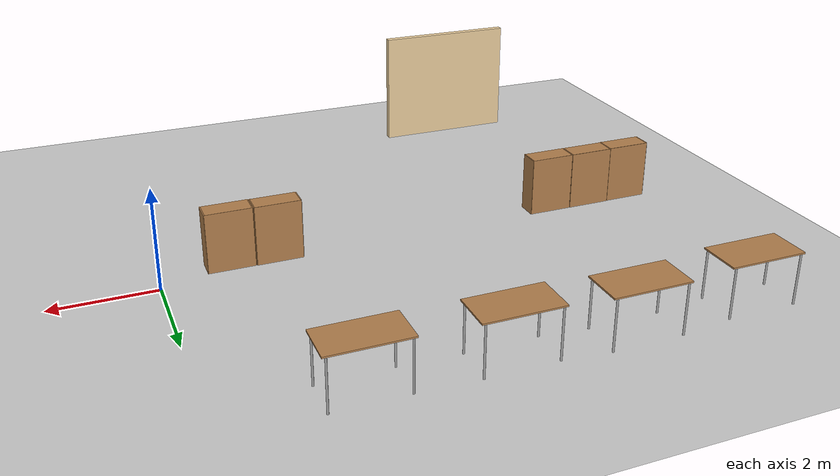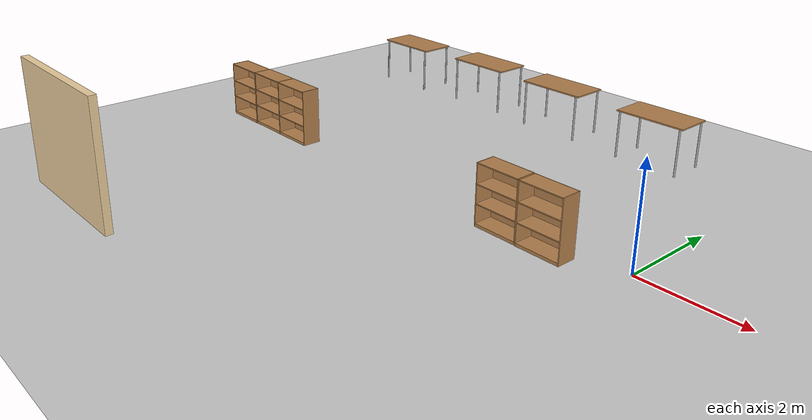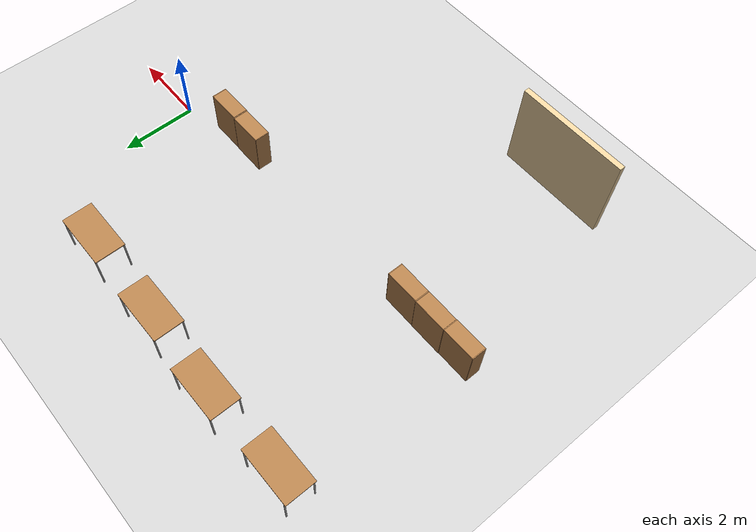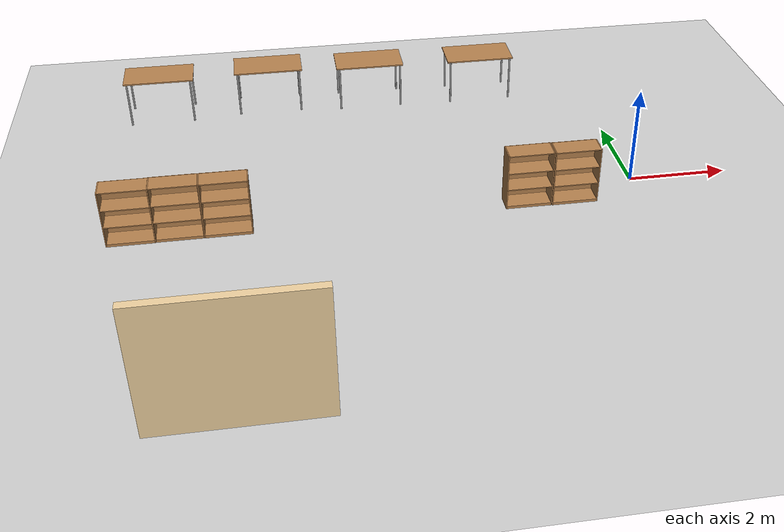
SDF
<sdf version="1.6">
 <world name="default">
  <model name="ground_plane">
   <static>1</static>
   <link name="link">
    <collision name="collision">
     <geometry><plane><normal>0 0 1</normal><size>100 100</size></plane></geometry>
     <surface><friction><ode><mu>100</mu><mu2>50</mu2></ode></friction></surface>
    </collision>
    <visual name="visual">
     <cast_shadows>0</cast_shadows>
     <geometry><plane><normal>0 0 1</normal><size>100 100</size></plane></geometry>
     <material>
      <script><uri>file://media/materials/scripts/gazebo.material</uri><name>Gazebo/Grey</name></script>
     </material>
    </visual>
   </link>
  </model>
  <model name="Office1">
   <pose>-7.98552 -5.65127 0 0 -0 0</pose>
   <link name="Wall_85">
    <collision name="Wall_85_Collision">
     <geometry><box><size>3 0.15 2.5</size></box></geometry>
     <pose>0 0 1.25 0 -0 0</pose>
    </collision>
    <visual name="Wall_85_Visual">
     <pose>0 0 1.25 0 -0 0</pose>
     <geometry><box><size>3 0.15 2.5</size></box></geometry>
     <material>
      <script><uri>file://media/materials/scripts/gazebo.material</uri><name>Gazebo/Grey</name></script>
      <ambient>0.921569 0.807843 0.615686 1</ambient>
     </material>
     <meta><layer>0</layer></meta>
    </visual>
   </link>
   <static>1</static>
  </model>
  <model name="table">
   <static>1</static>
   <link name="link">
    <collision name="surface">
     <pose>0 0 1 0 -0 0</pose>
     <geometry><box><size>1.5 0.8 0.03</size></box></geometry>
     <surface><friction><ode><mu>0.6</mu><mu2>0.6</mu2></ode></friction></surface>
    </collision>
    <visual name="visual1">
     <pose>0 0 1 0 -0 0</pose>
     <geometry><box><size>1.5 0.8 0.03</size></box></geometry>
     <material>
      <script><uri>file://media/materials/scripts/gazebo.material</uri><name>Gazebo/Wood</name></script>
     </material>
    </visual>
    <collision name="front_left_leg">
     <pose>0.68 0.38 0.5 0 -0 0</pose>
     <geometry><cylinder><radius>0.02</radius><length>1</length></cylinder></geometry>
    </collision>
    <visual name="front_left_leg">
     <pose>0.68 0.38 0.5 0 -0 0</pose>
     <geometry><cylinder><radius>0.02</radius><length>1</length></cylinder></geometry>
     <material>
      <script><uri>file://media/materials/scripts/gazebo.material</uri><name>Gazebo/Grey</name></script>
     </material>
    </visual>
    <collision name="front_right_leg">
     <pose>0.68 -0.38 0.5 0 -0 0</pose>
     <geometry><cylinder><radius>0.02</radius><length>1</length></cylinder></geometry>
    </collision>
    <visual name="front_right_leg">
     <pose>0.68 -0.38 0.5 0 -0 0</pose>
     <geometry><cylinder><radius>0.02</radius><length>1</length></cylinder></geometry>
     <material>
      <script><uri>file://media/materials/scripts/gazebo.material</uri><name>Gazebo/Grey</name></script>
     </material>
    </visual>
    <collision name="back_right_leg">
     <pose>-0.68 -0.38 0.5 0 -0 0</pose>
     <geometry><cylinder><radius>0.02</radius><length>1</length></cylinder></geometry>
    </collision>
    <visual name="back_right_leg">
     <pose>-0.68 -0.38 0.5 0 -0 0</pose>
     <geometry><cylinder><radius>0.02</radius><length>1</length></cylinder></geometry>
     <material>
      <script><uri>file://media/materials/scripts/gazebo.material</uri><name>Gazebo/Grey</name></script>
     </material>
    </visual>
    <collision name="back_left_leg">
     <pose>-0.68 0.38 0.5 0 -0 0</pose>
     <geometry><cylinder><radius>0.02</radius><length>1</length></cylinder></geometry>
    </collision>
    <visual name="back_left_leg">
     <pose>-0.68 0.38 0.5 0 -0 0</pose>
     <geometry><cylinder><radius>0.02</radius><length>1</length></cylinder></geometry>
     <material>
      <script><uri>file://media/materials/scripts/gazebo.material</uri><name>Gazebo/Grey</name></script>
     </material>
    </visual>
   </link>
   <pose>-2.37431 4.20613 0 0 -0 0</pose>
  </model>
  <model name="table_0">
   <static>1</static>
   <link name="link">
    <collision name="surface">
     <pose>0 0 1 0 -0 0</pose>
     <geometry><box><size>1.5 0.8 0.03</size></box></geometry>
     <surface><friction><ode><mu>0.6</mu><mu2>0.6</mu2></ode></friction></surface>
    </collision>
    <visual name="visual1">
     <pose>0 0 1 0 -0 0</pose>
     <geometry><box><size>1.5 0.8 0.03</size></box></geometry>
     <material>
      <script><uri>file://media/materials/scripts/gazebo.material</uri><name>Gazebo/Wood</name></script>
     </material>
    </visual>
    <collision name="front_left_leg">
     <pose>0.68 0.38 0.5 0 -0 0</pose>
     <geometry><cylinder><radius>0.02</radius><length>1</length></cylinder></geometry>
    </collision>
    <visual name="front_left_leg">
     <pose>0.68 0.38 0.5 0 -0 0</pose>
     <geometry><cylinder><radius>0.02</radius><length>1</length></cylinder></geometry>
     <material>
      <script><uri>file://media/materials/scripts/gazebo.material</uri><name>Gazebo/Grey</name></script>
     </material>
    </visual>
    <collision name="front_right_leg">
     <pose>0.68 -0.38 0.5 0 -0 0</pose>
     <geometry><cylinder><radius>0.02</radius><length>1</length></cylinder></geometry>
    </collision>
    <visual name="front_right_leg">
     <pose>0.68 -0.38 0.5 0 -0 0</pose>
     <geometry><cylinder><radius>0.02</radius><length>1</length></cylinder></geometry>
     <material>
      <script><uri>file://media/materials/scripts/gazebo.material</uri><name>Gazebo/Grey</name></script>
     </material>
    </visual>
    <collision name="back_right_leg">
     <pose>-0.68 -0.38 0.5 0 -0 0</pose>
     <geometry><cylinder><radius>0.02</radius><length>1</length></cylinder></geometry>
    </collision>
    <visual name="back_right_leg">
     <pose>-0.68 -0.38 0.5 0 -0 0</pose>
     <geometry><cylinder><radius>0.02</radius><length>1</length></cylinder></geometry>
     <material>
      <script><uri>file://media/materials/scripts/gazebo.material</uri><name>Gazebo/Grey</name></script>
     </material>
    </visual>
    <collision name="back_left_leg">
     <pose>-0.68 0.38 0.5 0 -0 0</pose>
     <geometry><cylinder><radius>0.02</radius><length>1</length></cylinder></geometry>
    </collision>
    <visual name="back_left_leg">
     <pose>-0.68 0.38 0.5 0 -0 0</pose>
     <geometry><cylinder><radius>0.02</radius><length>1</length></cylinder></geometry>
     <material>
      <script><uri>file://media/materials/scripts/gazebo.material</uri><name>Gazebo/Grey</name></script>
     </material>
    </visual>
   </link>
   <pose>-4.88669 4.25814 0 0 -0 0</pose>
  </model>
  <model name="table_1">
   <static>1</static>
   <link name="link">
    <collision name="surface">
     <pose>0 0 1 0 -0 0</pose>
     <geometry><box><size>1.5 0.8 0.03</size></box></geometry>
     <surface><friction><ode><mu>0.6</mu><mu2>0.6</mu2></ode></friction></surface>
    </collision>
    <visual name="visual1">
     <pose>0 0 1 0 -0 0</pose>
     <geometry><box><size>1.5 0.8 0.03</size></box></geometry>
     <material>
      <script><uri>file://media/materials/scripts/gazebo.material</uri><name>Gazebo/Wood</name></script>
     </material>
    </visual>
    <collision name="front_left_leg">
     <pose>0.68 0.38 0.5 0 -0 0</pose>
     <geometry><cylinder><radius>0.02</radius><length>1</length></cylinder></geometry>
    </collision>
    <visual name="front_left_leg">
     <pose>0.68 0.38 0.5 0 -0 0</pose>
     <geometry><cylinder><radius>0.02</radius><length>1</length></cylinder></geometry>
     <material>
      <script><uri>file://media/materials/scripts/gazebo.material</uri><name>Gazebo/Grey</name></script>
     </material>
    </visual>
    <collision name="front_right_leg">
     <pose>0.68 -0.38 0.5 0 -0 0</pose>
     <geometry><cylinder><radius>0.02</radius><length>1</length></cylinder></geometry>
    </collision>
    <visual name="front_right_leg">
     <pose>0.68 -0.38 0.5 0 -0 0</pose>
     <geometry><cylinder><radius>0.02</radius><length>1</length></cylinder></geometry>
     <material>
      <script><uri>file://media/materials/scripts/gazebo.material</uri><name>Gazebo/Grey</name></script>
     </material>
    </visual>
    <collision name="back_right_leg">
     <pose>-0.68 -0.38 0.5 0 -0 0</pose>
     <geometry><cylinder><radius>0.02</radius><length>1</length></cylinder></geometry>
    </collision>
    <visual name="back_right_leg">
     <pose>-0.68 -0.38 0.5 0 -0 0</pose>
     <geometry><cylinder><radius>0.02</radius><length>1</length></cylinder></geometry>
     <material>
      <script><uri>file://media/materials/scripts/gazebo.material</uri><name>Gazebo/Grey</name></script>
     </material>
    </visual>
    <collision name="back_left_leg">
     <pose>-0.68 0.38 0.5 0 -0 0</pose>
     <geometry><cylinder><radius>0.02</radius><length>1</length></cylinder></geometry>
    </collision>
    <visual name="back_left_leg">
     <pose>-0.68 0.38 0.5 0 -0 0</pose>
     <geometry><cylinder><radius>0.02</radius><length>1</length></cylinder></geometry>
     <material>
      <script><uri>file://media/materials/scripts/gazebo.material</uri><name>Gazebo/Grey</name></script>
     </material>
    </visual>
   </link>
   <pose>-7.14945 4.35661 0 0 -0 0</pose>
  </model>
  <model name="table_2">
   <static>1</static>
   <link name="link">
    <collision name="surface">
     <pose>0 0 1 0 -0 0</pose>
     <geometry><box><size>1.5 0.8 0.03</size></box></geometry>
     <surface><friction><ode><mu>0.6</mu><mu2>0.6</mu2></ode></friction></surface>
    </collision>
    <visual name="visual1">
     <pose>0 0 1 0 -0 0</pose>
     <geometry><box><size>1.5 0.8 0.03</size></box></geometry>
     <material>
      <script><uri>file://media/materials/scripts/gazebo.material</uri><name>Gazebo/Wood</name></script>
     </material>
    </visual>
    <collision name="front_left_leg">
     <pose>0.68 0.38 0.5 0 -0 0</pose>
     <geometry><cylinder><radius>0.02</radius><length>1</length></cylinder></geometry>
    </collision>
    <visual name="front_left_leg">
     <pose>0.68 0.38 0.5 0 -0 0</pose>
     <geometry><cylinder><radius>0.02</radius><length>1</length></cylinder></geometry>
     <material>
      <script><uri>file://media/materials/scripts/gazebo.material</uri><name>Gazebo/Grey</name></script>
     </material>
    </visual>
    <collision name="front_right_leg">
     <pose>0.68 -0.38 0.5 0 -0 0</pose>
     <geometry><cylinder><radius>0.02</radius><length>1</length></cylinder></geometry>
    </collision>
    <visual name="front_right_leg">
     <pose>0.68 -0.38 0.5 0 -0 0</pose>
     <geometry><cylinder><radius>0.02</radius><length>1</length></cylinder></geometry>
     <material>
      <script><uri>file://media/materials/scripts/gazebo.material</uri><name>Gazebo/Grey</name></script>
     </material>
    </visual>
    <collision name="back_right_leg">
     <pose>-0.68 -0.38 0.5 0 -0 0</pose>
     <geometry><cylinder><radius>0.02</radius><length>1</length></cylinder></geometry>
    </collision>
    <visual name="back_right_leg">
     <pose>-0.68 -0.38 0.5 0 -0 0</pose>
     <geometry><cylinder><radius>0.02</radius><length>1</length></cylinder></geometry>
     <material>
      <script><uri>file://media/materials/scripts/gazebo.material</uri><name>Gazebo/Grey</name></script>
     </material>
    </visual>
    <collision name="back_left_leg">
     <pose>-0.68 0.38 0.5 0 -0 0</pose>
     <geometry><cylinder><radius>0.02</radius><length>1</length></cylinder></geometry>
    </collision>
    <visual name="back_left_leg">
     <pose>-0.68 0.38 0.5 0 -0 0</pose>
     <geometry><cylinder><radius>0.02</radius><length>1</length></cylinder></geometry>
     <material>
      <script><uri>file://media/materials/scripts/gazebo.material</uri><name>Gazebo/Grey</name></script>
     </material>
    </visual>
   </link>
   <pose>-9.53934 4.23317 0 0 -0 0</pose>
  </model>
  <model name="bookshelf_0">
   <static>1</static>
   <link name="link">
    <inertial><mass>1</mass></inertial>
    <collision name="back">
     <pose>0 0.005 0.6 0 -0 0</pose>
     <geometry><box><size>0.9 0.01 1.2</size></box></geometry>
    </collision>
    <visual name="visual1">
     <pose>0 0.005 0.6 0 -0 0</pose>
     <geometry><box><size>0.9 0.01 1.2</size></box></geometry>
     <material>
      <script><uri>file://media/materials/scripts/gazebo.material</uri><name>Gazebo/Wood</name></script>
     </material>
    </visual>
    <collision name="left_side">
     <pose>0.45 -0.195 0.6 0 -0 0</pose>
     <geometry><box><size>0.02 0.4 1.2</size></box></geometry>
    </collision>
    <visual name="visual2">
     <pose>0.45 -0.195 0.6 0 -0 0</pose>
     <geometry><box><size>0.02 0.4 1.2</size></box></geometry>
     <material>
      <script><uri>file://media/materials/scripts/gazebo.material</uri><name>Gazebo/Wood</name></script>
     </material>
    </visual>
    <collision name="right_side">
     <pose>-0.45 -0.195 0.6 0 -0 0</pose>
     <geometry><box><size>0.02 0.4 1.2</size></box></geometry>
    </collision>
    <visual name="visual3">
     <pose>-0.45 -0.195 0.6 0 -0 0</pose>
     <geometry><box><size>0.02 0.4 1.2</size></box></geometry>
     <material>
      <script><uri>file://media/materials/scripts/gazebo.material</uri><name>Gazebo/Wood</name></script>
     </material>
    </visual>
    <collision name="bottom">
     <pose>0 -0.195 0.03 0 -0 0</pose>
     <geometry><box><size>0.88 0.4 0.06</size></box></geometry>
    </collision>
    <visual name="visual4">
     <pose>0 -0.195 0.03 0 -0 0</pose>
     <geometry><box><size>0.88 0.4 0.06</size></box></geometry>
     <material>
      <script><uri>file://media/materials/scripts/gazebo.material</uri><name>Gazebo/Wood</name></script>
     </material>
    </visual>
    <collision name="top">
     <pose>0 -0.195 1.19 0 -0 0</pose>
     <geometry><box><size>0.88 0.4 0.02</size></box></geometry>
    </collision>
    <visual name="visual5">
     <pose>0 -0.195 1.19 0 -0 0</pose>
     <geometry><box><size>0.88 0.4 0.02</size></box></geometry>
     <material>
      <script><uri>file://media/materials/scripts/gazebo.material</uri><name>Gazebo/Wood</name></script>
     </material>
    </visual>
    <collision name="low_shelf">
     <pose>0 -0.195 0.43 0 -0 0</pose>
     <geometry><box><size>0.88 0.4 0.02</size></box></geometry>
    </collision>
    <visual name="visual6">
     <pose>0 -0.195 0.43 0 -0 0</pose>
     <geometry><box><size>0.88 0.4 0.02</size></box></geometry>
     <material>
      <script><uri>file://media/materials/scripts/gazebo.material</uri><name>Gazebo/Wood</name></script>
     </material>
    </visual>
    <collision name="high_shelf">
     <pose>0 -0.195 0.8 0 -0 0</pose>
     <geometry><box><size>0.88 0.4 0.02</size></box></geometry>
    </collision>
    <visual name="visual7">
     <pose>0 -0.195 0.8 0 -0 0</pose>
     <geometry><box><size>0.88 0.4 0.02</size></box></geometry>
     <material>
      <script><uri>file://media/materials/scripts/gazebo.material</uri><name>Gazebo/Wood</name></script>
     </material>
    </visual>
   </link>
   <pose>-1.36477 -0.291597 0 0 -0 0</pose>
  </model>
  <model name="bookshelf_1">
   <static>1</static>
   <link name="link">
    <inertial><mass>1</mass></inertial>
    <collision name="back">
     <pose>0 0.005 0.6 0 -0 0</pose>
     <geometry><box><size>0.9 0.01 1.2</size></box></geometry>
    </collision>
    <visual name="visual1">
     <pose>0 0.005 0.6 0 -0 0</pose>
     <geometry><box><size>0.9 0.01 1.2</size></box></geometry>
     <material>
      <script><uri>file://media/materials/scripts/gazebo.material</uri><name>Gazebo/Wood</name></script>
     </material>
    </visual>
    <collision name="left_side">
     <pose>0.45 -0.195 0.6 0 -0 0</pose>
     <geometry><box><size>0.02 0.4 1.2</size></box></geometry>
    </collision>
    <visual name="visual2">
     <pose>0.45 -0.195 0.6 0 -0 0</pose>
     <geometry><box><size>0.02 0.4 1.2</size></box></geometry>
     <material>
      <script><uri>file://media/materials/scripts/gazebo.material</uri><name>Gazebo/Wood</name></script>
     </material>
    </visual>
    <collision name="right_side">
     <pose>-0.45 -0.195 0.6 0 -0 0</pose>
     <geometry><box><size>0.02 0.4 1.2</size></box></geometry>
    </collision>
    <visual name="visual3">
     <pose>-0.45 -0.195 0.6 0 -0 0</pose>
     <geometry><box><size>0.02 0.4 1.2</size></box></geometry>
     <material>
      <script><uri>file://media/materials/scripts/gazebo.material</uri><name>Gazebo/Wood</name></script>
     </material>
    </visual>
    <collision name="bottom">
     <pose>0 -0.195 0.03 0 -0 0</pose>
     <geometry><box><size>0.88 0.4 0.06</size></box></geometry>
    </collision>
    <visual name="visual4">
     <pose>0 -0.195 0.03 0 -0 0</pose>
     <geometry><box><size>0.88 0.4 0.06</size></box></geometry>
     <material>
      <script><uri>file://media/materials/scripts/gazebo.material</uri><name>Gazebo/Wood</name></script>
     </material>
    </visual>
    <collision name="top">
     <pose>0 -0.195 1.19 0 -0 0</pose>
     <geometry><box><size>0.88 0.4 0.02</size></box></geometry>
    </collision>
    <visual name="visual5">
     <pose>0 -0.195 1.19 0 -0 0</pose>
     <geometry><box><size>0.88 0.4 0.02</size></box></geometry>
     <material>
      <script><uri>file://media/materials/scripts/gazebo.material</uri><name>Gazebo/Wood</name></script>
     </material>
    </visual>
    <collision name="low_shelf">
     <pose>0 -0.195 0.43 0 -0 0</pose>
     <geometry><box><size>0.88 0.4 0.02</size></box></geometry>
    </collision>
    <visual name="visual6">
     <pose>0 -0.195 0.43 0 -0 0</pose>
     <geometry><box><size>0.88 0.4 0.02</size></box></geometry>
     <material>
      <script><uri>file://media/materials/scripts/gazebo.material</uri><name>Gazebo/Wood</name></script>
     </material>
    </visual>
    <collision name="high_shelf">
     <pose>0 -0.195 0.8 0 -0 0</pose>
     <geometry><box><size>0.88 0.4 0.02</size></box></geometry>
    </collision>
    <visual name="visual7">
     <pose>0 -0.195 0.8 0 -0 0</pose>
     <geometry><box><size>0.88 0.4 0.02</size></box></geometry>
     <material>
      <script><uri>file://media/materials/scripts/gazebo.material</uri><name>Gazebo/Wood</name></script>
     </material>
    </visual>
   </link>
   <pose>-2.29085 -0.281788 0 0 -0 0</pose>
  </model>
  <model name="bookshelf_2">
   <static>1</static>
   <link name="link">
    <inertial><mass>1</mass></inertial>
    <collision name="back">
     <pose>0 0.005 0.6 0 -0 0</pose>
     <geometry><box><size>0.9 0.01 1.2</size></box></geometry>
    </collision>
    <visual name="visual1">
     <pose>0 0.005 0.6 0 -0 0</pose>
     <geometry><box><size>0.9 0.01 1.2</size></box></geometry>
     <material>
      <script><uri>file://media/materials/scripts/gazebo.material</uri><name>Gazebo/Wood</name></script>
     </material>
    </visual>
    <collision name="left_side">
     <pose>0.45 -0.195 0.6 0 -0 0</pose>
     <geometry><box><size>0.02 0.4 1.2</size></box></geometry>
    </collision>
    <visual name="visual2">
     <pose>0.45 -0.195 0.6 0 -0 0</pose>
     <geometry><box><size>0.02 0.4 1.2</size></box></geometry>
     <material>
      <script><uri>file://media/materials/scripts/gazebo.material</uri><name>Gazebo/Wood</name></script>
     </material>
    </visual>
    <collision name="right_side">
     <pose>-0.45 -0.195 0.6 0 -0 0</pose>
     <geometry><box><size>0.02 0.4 1.2</size></box></geometry>
    </collision>
    <visual name="visual3">
     <pose>-0.45 -0.195 0.6 0 -0 0</pose>
     <geometry><box><size>0.02 0.4 1.2</size></box></geometry>
     <material>
      <script><uri>file://media/materials/scripts/gazebo.material</uri><name>Gazebo/Wood</name></script>
     </material>
    </visual>
    <collision name="bottom">
     <pose>0 -0.195 0.03 0 -0 0</pose>
     <geometry><box><size>0.88 0.4 0.06</size></box></geometry>
    </collision>
    <visual name="visual4">
     <pose>0 -0.195 0.03 0 -0 0</pose>
     <geometry><box><size>0.88 0.4 0.06</size></box></geometry>
     <material>
      <script><uri>file://media/materials/scripts/gazebo.material</uri><name>Gazebo/Wood</name></script>
     </material>
    </visual>
    <collision name="top">
     <pose>0 -0.195 1.19 0 -0 0</pose>
     <geometry><box><size>0.88 0.4 0.02</size></box></geometry>
    </collision>
    <visual name="visual5">
     <pose>0 -0.195 1.19 0 -0 0</pose>
     <geometry><box><size>0.88 0.4 0.02</size></box></geometry>
     <material>
      <script><uri>file://media/materials/scripts/gazebo.material</uri><name>Gazebo/Wood</name></script>
     </material>
    </visual>
    <collision name="low_shelf">
     <pose>0 -0.195 0.43 0 -0 0</pose>
     <geometry><box><size>0.88 0.4 0.02</size></box></geometry>
    </collision>
    <visual name="visual6">
     <pose>0 -0.195 0.43 0 -0 0</pose>
     <geometry><box><size>0.88 0.4 0.02</size></box></geometry>
     <material>
      <script><uri>file://media/materials/scripts/gazebo.material</uri><name>Gazebo/Wood</name></script>
     </material>
    </visual>
    <collision name="high_shelf">
     <pose>0 -0.195 0.8 0 -0 0</pose>
     <geometry><box><size>0.88 0.4 0.02</size></box></geometry>
    </collision>
    <visual name="visual7">
     <pose>0 -0.195 0.8 0 -0 0</pose>
     <geometry><box><size>0.88 0.4 0.02</size></box></geometry>
     <material>
      <script><uri>file://media/materials/scripts/gazebo.material</uri><name>Gazebo/Wood</name></script>
     </material>
    </visual>
   </link>
   <pose>-8.13315 -0.343816 0 0 -0 0</pose>
  </model>
  <model name="bookshelf_3">
   <static>1</static>
   <link name="link">
    <inertial><mass>1</mass></inertial>
    <collision name="back">
     <pose>0 0.005 0.6 0 -0 0</pose>
     <geometry><box><size>0.9 0.01 1.2</size></box></geometry>
    </collision>
    <visual name="visual1">
     <pose>0 0.005 0.6 0 -0 0</pose>
     <geometry><box><size>0.9 0.01 1.2</size></box></geometry>
     <material>
      <script><uri>file://media/materials/scripts/gazebo.material</uri><name>Gazebo/Wood</name></script>
     </material>
    </visual>
    <collision name="left_side">
     <pose>0.45 -0.195 0.6 0 -0 0</pose>
     <geometry><box><size>0.02 0.4 1.2</size></box></geometry>
    </collision>
    <visual name="visual2">
     <pose>0.45 -0.195 0.6 0 -0 0</pose>
     <geometry><box><size>0.02 0.4 1.2</size></box></geometry>
     <material>
      <script><uri>file://media/materials/scripts/gazebo.material</uri><name>Gazebo/Wood</name></script>
     </material>
    </visual>
    <collision name="right_side">
     <pose>-0.45 -0.195 0.6 0 -0 0</pose>
     <geometry><box><size>0.02 0.4 1.2</size></box></geometry>
    </collision>
    <visual name="visual3">
     <pose>-0.45 -0.195 0.6 0 -0 0</pose>
     <geometry><box><size>0.02 0.4 1.2</size></box></geometry>
     <material>
      <script><uri>file://media/materials/scripts/gazebo.material</uri><name>Gazebo/Wood</name></script>
     </material>
    </visual>
    <collision name="bottom">
     <pose>0 -0.195 0.03 0 -0 0</pose>
     <geometry><box><size>0.88 0.4 0.06</size></box></geometry>
    </collision>
    <visual name="visual4">
     <pose>0 -0.195 0.03 0 -0 0</pose>
     <geometry><box><size>0.88 0.4 0.06</size></box></geometry>
     <material>
      <script><uri>file://media/materials/scripts/gazebo.material</uri><name>Gazebo/Wood</name></script>
     </material>
    </visual>
    <collision name="top">
     <pose>0 -0.195 1.19 0 -0 0</pose>
     <geometry><box><size>0.88 0.4 0.02</size></box></geometry>
    </collision>
    <visual name="visual5">
     <pose>0 -0.195 1.19 0 -0 0</pose>
     <geometry><box><size>0.88 0.4 0.02</size></box></geometry>
     <material>
      <script><uri>file://media/materials/scripts/gazebo.material</uri><name>Gazebo/Wood</name></script>
     </material>
    </visual>
    <collision name="low_shelf">
     <pose>0 -0.195 0.43 0 -0 0</pose>
     <geometry><box><size>0.88 0.4 0.02</size></box></geometry>
    </collision>
    <visual name="visual6">
     <pose>0 -0.195 0.43 0 -0 0</pose>
     <geometry><box><size>0.88 0.4 0.02</size></box></geometry>
     <material>
      <script><uri>file://media/materials/scripts/gazebo.material</uri><name>Gazebo/Wood</name></script>
     </material>
    </visual>
    <collision name="high_shelf">
     <pose>0 -0.195 0.8 0 -0 0</pose>
     <geometry><box><size>0.88 0.4 0.02</size></box></geometry>
    </collision>
    <visual name="visual7">
     <pose>0 -0.195 0.8 0 -0 0</pose>
     <geometry><box><size>0.88 0.4 0.02</size></box></geometry>
     <material>
      <script><uri>file://media/materials/scripts/gazebo.material</uri><name>Gazebo/Wood</name></script>
     </material>
    </visual>
   </link>
   <pose>-9.04549 -0.339252 0 0 -0 0</pose>
  </model>
  <model name="bookshelf_4">
   <static>1</static>
   <link name="link">
    <inertial><mass>1</mass></inertial>
    <collision name="back">
     <pose>0 0.005 0.6 0 -0 0</pose>
     <geometry><box><size>0.9 0.01 1.2</size></box></geometry>
    </collision>
    <visual name="visual1">
     <pose>0 0.005 0.6 0 -0 0</pose>
     <geometry><box><size>0.9 0.01 1.2</size></box></geometry>
     <material>
      <script><uri>file://media/materials/scripts/gazebo.material</uri><name>Gazebo/Wood</name></script>
     </material>
    </visual>
    <collision name="left_side">
     <pose>0.45 -0.195 0.6 0 -0 0</pose>
     <geometry><box><size>0.02 0.4 1.2</size></box></geometry>
    </collision>
    <visual name="visual2">
     <pose>0.45 -0.195 0.6 0 -0 0</pose>
     <geometry><box><size>0.02 0.4 1.2</size></box></geometry>
     <material>
      <script><uri>file://media/materials/scripts/gazebo.material</uri><name>Gazebo/Wood</name></script>
     </material>
    </visual>
    <collision name="right_side">
     <pose>-0.45 -0.195 0.6 0 -0 0</pose>
     <geometry><box><size>0.02 0.4 1.2</size></box></geometry>
    </collision>
    <visual name="visual3">
     <pose>-0.45 -0.195 0.6 0 -0 0</pose>
     <geometry><box><size>0.02 0.4 1.2</size></box></geometry>
     <material>
      <script><uri>file://media/materials/scripts/gazebo.material</uri><name>Gazebo/Wood</name></script>
     </material>
    </visual>
    <collision name="bottom">
     <pose>0 -0.195 0.03 0 -0 0</pose>
     <geometry><box><size>0.88 0.4 0.06</size></box></geometry>
    </collision>
    <visual name="visual4">
     <pose>0 -0.195 0.03 0 -0 0</pose>
     <geometry><box><size>0.88 0.4 0.06</size></box></geometry>
     <material>
      <script><uri>file://media/materials/scripts/gazebo.material</uri><name>Gazebo/Wood</name></script>
     </material>
    </visual>
    <collision name="top">
     <pose>0 -0.195 1.19 0 -0 0</pose>
     <geometry><box><size>0.88 0.4 0.02</size></box></geometry>
    </collision>
    <visual name="visual5">
     <pose>0 -0.195 1.19 0 -0 0</pose>
     <geometry><box><size>0.88 0.4 0.02</size></box></geometry>
     <material>
      <script><uri>file://media/materials/scripts/gazebo.material</uri><name>Gazebo/Wood</name></script>
     </material>
    </visual>
    <collision name="low_shelf">
     <pose>0 -0.195 0.43 0 -0 0</pose>
     <geometry><box><size>0.88 0.4 0.02</size></box></geometry>
    </collision>
    <visual name="visual6">
     <pose>0 -0.195 0.43 0 -0 0</pose>
     <geometry><box><size>0.88 0.4 0.02</size></box></geometry>
     <material>
      <script><uri>file://media/materials/scripts/gazebo.material</uri><name>Gazebo/Wood</name></script>
     </material>
    </visual>
    <collision name="high_shelf">
     <pose>0 -0.195 0.8 0 -0 0</pose>
     <geometry><box><size>0.88 0.4 0.02</size></box></geometry>
    </collision>
    <visual name="visual7">
     <pose>0 -0.195 0.8 0 -0 0</pose>
     <geometry><box><size>0.88 0.4 0.02</size></box></geometry>
     <material>
      <script><uri>file://media/materials/scripts/gazebo.material</uri><name>Gazebo/Wood</name></script>
     </material>
    </visual>
   </link>
   <pose>-9.94946 -0.349377 0 0 -0 0</pose>
  </model>
 </world>
</sdf>
